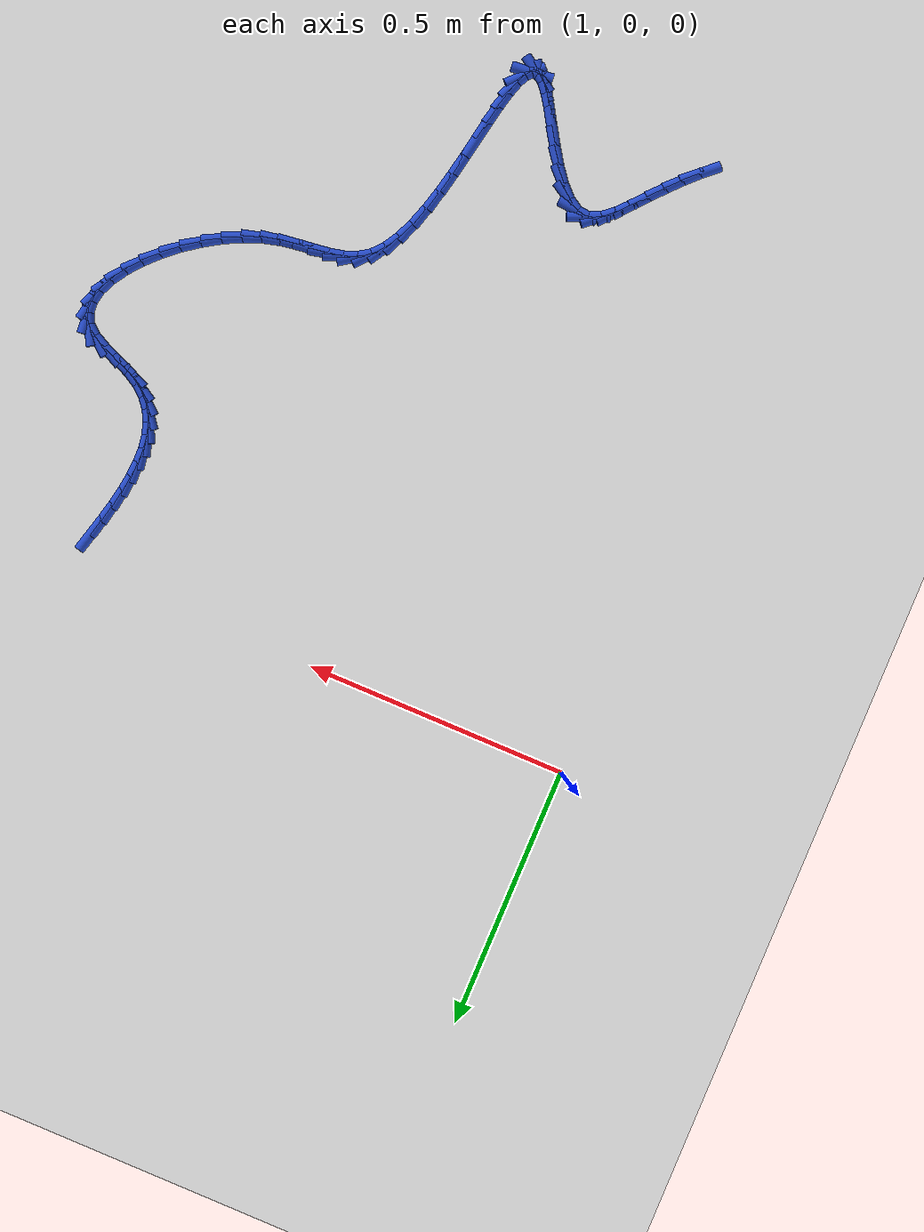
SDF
<sdf version="1.6">
 <world name="default">
  <model name="ground_plane">
   <static>1</static>
   <link name="link">
    <collision name="collision">
     <geometry><plane><normal>0 0 1</normal><size>100 100</size></plane></geometry>
     <surface><friction><ode><mu>100</mu><mu2>50</mu2></ode></friction></surface>
    </collision>
    <visual name="visual">
     <cast_shadows>0</cast_shadows>
     <geometry><plane><normal>0 0 1</normal><size>100 100</size></plane></geometry>
     <material>
      <script><uri>file://media/materials/scripts/gazebo.material</uri><name>Gazebo/WhiteGlow</name></script>
     </material>
    </visual>
   </link>
  </model>
  <model name="line">
   <link name="link_132">
    <pose>1.9674159593925404 -0.07118699439387949 0.01 0 1.57 1.3107401116216613</pose>
    <collision name="collision">
     <geometry><cylinder><radius>0.01</radius><length>0.08</length></cylinder></geometry>
    </collision>
    <visual name="visual">
     <material>
      <script><name>Gazebo/Blue</name><uri>file://media/materials/scripts/gazebo.material</uri></script>
     </material>
     <geometry><cylinder><radius>0.01</radius><length>0.08</length></cylinder></geometry>
    </visual>
   </link>
   <link name="link_133">
    <pose>1.9587963435968283 -0.10358161089456536 0.01 0 1.57 1.339821732211831</pose>
    <collision name="collision">
     <geometry><cylinder><radius>0.01</radius><length>0.08</length></cylinder></geometry>
    </collision>
    <visual name="visual">
     <material>
      <script><name>Gazebo/Blue</name><uri>file://media/materials/scripts/gazebo.material</uri></script>
     </material>
     <geometry><cylinder><radius>0.01</radius><length>0.08</length></cylinder></geometry>
    </visual>
   </link>
   <link name="link_134">
    <pose>1.9513693643880836 -0.1351627138305053 0.01 0 1.57 1.3810361119806578</pose>
    <collision name="collision">
     <geometry><cylinder><radius>0.01</radius><length>0.08</length></cylinder></geometry>
    </collision>
    <visual name="visual">
     <material>
      <script><name>Gazebo/Blue</name><uri>file://media/materials/scripts/gazebo.material</uri></script>
     </material>
     <geometry><cylinder><radius>0.01</radius><length>0.08</length></cylinder></geometry>
    </visual>
   </link>
   <link name="link_135">
    <pose>1.9454920492646681 -0.16576238353108033 0.01 0 1.57 1.4367799848557148</pose>
    <collision name="collision">
     <geometry><cylinder><radius>0.01</radius><length>0.08</length></cylinder></geometry>
    </collision>
    <visual name="visual">
     <material>
      <script><name>Gazebo/Blue</name><uri>file://media/materials/scripts/gazebo.material</uri></script>
     </material>
     <geometry><cylinder><radius>0.01</radius><length>0.08</length></cylinder></geometry>
    </visual>
   </link>
   <link name="link_136">
    <pose>1.9415214257249453 -0.19521270032567065 0.01 0 1.57 1.5101980284292835</pose>
    <collision name="collision">
     <geometry><cylinder><radius>0.01</radius><length>0.08</length></cylinder></geometry>
    </collision>
    <visual name="visual">
     <material>
      <script><name>Gazebo/Blue</name><uri>file://media/materials/scripts/gazebo.material</uri></script>
     </material>
     <geometry><cylinder><radius>0.01</radius><length>0.08</length></cylinder></geometry>
    </visual>
   </link>
   <link name="link_137">
    <pose>1.939814521267277 -0.22334574454365488 0.01 0 1.57 -1.536516485348217</pose>
    <collision name="collision">
     <geometry><cylinder><radius>0.01</radius><length>0.08</length></cylinder></geometry>
    </collision>
    <visual name="visual">
     <material>
      <script><name>Gazebo/Blue</name><uri>file://media/materials/scripts/gazebo.material</uri></script>
     </material>
     <geometry><cylinder><radius>0.01</radius><length>0.08</length></cylinder></geometry>
    </visual>
   </link>
   <link name="link_138">
    <pose>1.9407283633900279 -0.24999359651441505 0.01 0 1.57 -1.416339054290478</pose>
    <collision name="collision">
     <geometry><cylinder><radius>0.01</radius><length>0.08</length></cylinder></geometry>
    </collision>
    <visual name="visual">
     <material>
      <script><name>Gazebo/Blue</name><uri>file://media/materials/scripts/gazebo.material</uri></script>
     </material>
     <geometry><cylinder><radius>0.01</radius><length>0.08</length></cylinder></geometry>
    </visual>
   </link>
   <link name="link_139">
    <pose>1.9446199795915589 -0.2749883365673297 0.01 0 1.57 -1.2685156632145047</pose>
    <collision name="collision">
     <geometry><cylinder><radius>0.01</radius><length>0.08</length></cylinder></geometry>
    </collision>
    <visual name="visual">
     <material>
      <script><name>Gazebo/Blue</name><uri>file://media/materials/scripts/gazebo.material</uri></script>
     </material>
     <geometry><cylinder><radius>0.01</radius><length>0.08</length></cylinder></geometry>
    </visual>
   </link>
   <link name="link_140">
    <pose>1.951846397370233 -0.29816204503177945 0.01 0 1.57 -1.094918817462515</pose>
    <collision name="collision">
     <geometry><cylinder><radius>0.01</radius><length>0.08</length></cylinder></geometry>
    </collision>
    <visual name="visual">
     <material>
      <script><name>Gazebo/Blue</name><uri>file://media/materials/scripts/gazebo.material</uri></script>
     </material>
     <geometry><cylinder><radius>0.01</radius><length>0.08</length></cylinder></geometry>
    </visual>
   </link>
   <link name="link_141">
    <pose>1.9627646442244142 -0.3193468022371454 0.01 0 1.57 -0.9042872204437473</pose>
    <collision name="collision">
     <geometry><cylinder><radius>0.01</radius><length>0.08</length></cylinder></geometry>
    </collision>
    <visual name="visual">
     <material>
      <script><name>Gazebo/Blue</name><uri>file://media/materials/scripts/gazebo.material</uri></script>
     </material>
     <geometry><cylinder><radius>0.01</radius><length>0.08</length></cylinder></geometry>
    </visual>
   </link>
   <link name="link_142">
    <pose>1.9777317476524636 -0.3383746885128062 0.01 0 1.57 -0.7115255822173682</pose>
    <collision name="collision">
     <geometry><cylinder><radius>0.01</radius><length>0.08</length></cylinder></geometry>
    </collision>
    <visual name="visual">
     <material>
      <script><name>Gazebo/Blue</name><uri>file://media/materials/scripts/gazebo.material</uri></script>
     </material>
     <geometry><cylinder><radius>0.01</radius><length>0.08</length></cylinder></geometry>
    </visual>
   </link>
   <link name="link_143">
    <pose>1.9971047351527456 -0.3550777841881433 0.01 0 1.57 -0.5325068293064062</pose>
    <collision name="collision">
     <geometry><cylinder><radius>0.01</radius><length>0.08</length></cylinder></geometry>
    </collision>
    <visual name="visual">
     <material>
      <script><name>Gazebo/Blue</name><uri>file://media/materials/scripts/gazebo.material</uri></script>
     </material>
     <geometry><cylinder><radius>0.01</radius><length>0.08</length></cylinder></geometry>
    </visual>
   </link>
   <link name="link_144">
    <pose>2.0212286235820756 -0.3692937357733466 0.01 0 1.57 -0.41055981130311553</pose>
    <collision name="collision">
     <geometry><cylinder><radius>0.01</radius><length>0.08</length></cylinder></geometry>
    </collision>
    <visual name="visual">
     <material>
      <script><name>Gazebo/Blue</name><uri>file://media/materials/scripts/gazebo.material</uri></script>
     </material>
     <geometry><cylinder><radius>0.01</radius><length>0.08</length></cylinder></geometry>
    </visual>
   </link>
   <link name="link_145">
    <pose>2.049165694926219 -0.38145465712644383 0.01 0 1.57 -0.38924727225726863</pose>
    <collision name="collision">
     <geometry><cylinder><radius>0.01</radius><length>0.08</length></cylinder></geometry>
    </collision>
    <visual name="visual">
     <material>
      <script><name>Gazebo/Blue</name><uri>file://media/materials/scripts/gazebo.material</uri></script>
     </material>
     <geometry><cylinder><radius>0.01</radius><length>0.08</length></cylinder></geometry>
    </visual>
   </link>
   <link name="link_146">
    <pose>2.077573806975296 -0.39310696226748726 0.01 0 1.57 -0.4692170128843568</pose>
    <collision name="collision">
     <geometry><cylinder><radius>0.01</radius><length>0.08</length></cylinder></geometry>
    </collision>
    <visual name="visual">
     <material>
      <script><name>Gazebo/Blue</name><uri>file://media/materials/scripts/gazebo.material</uri></script>
     </material>
     <geometry><cylinder><radius>0.01</radius><length>0.08</length></cylinder></geometry>
    </visual>
   </link>
   <link name="link_147">
    <pose>2.102846310009885 -0.40591964789610907 0.01 0 1.57 -0.6996203925345501</pose>
    <collision name="collision">
     <geometry><cylinder><radius>0.01</radius><length>0.08</length></cylinder></geometry>
    </collision>
    <visual name="visual">
     <material>
      <script><name>Gazebo/Blue</name><uri>file://media/materials/scripts/gazebo.material</uri></script>
     </material>
     <geometry><cylinder><radius>0.01</radius><length>0.08</length></cylinder></geometry>
    </visual>
   </link>
   <link name="link_148">
    <pose>2.121410104240281 -0.42154367350856586 0.01 0 1.57 -1.0906399799342212</pose>
    <collision name="collision">
     <geometry><cylinder><radius>0.01</radius><length>0.08</length></cylinder></geometry>
    </collision>
    <visual name="visual">
     <material>
      <script><name>Gazebo/Blue</name><uri>file://media/materials/scripts/gazebo.material</uri></script>
     </material>
     <geometry><cylinder><radius>0.01</radius><length>0.08</length></cylinder></geometry>
    </visual>
   </link>
   <link name="link_149">
    <pose>2.131394563764831 -0.440714710014479 0.01 0 1.57 -1.4802467335282632</pose>
    <collision name="collision">
     <geometry><cylinder><radius>0.01</radius><length>0.08</length></cylinder></geometry>
    </collision>
    <visual name="visual">
     <material>
      <script><name>Gazebo/Blue</name><uri>file://media/materials/scripts/gazebo.material</uri></script>
     </material>
     <geometry><cylinder><radius>0.01</radius><length>0.08</length></cylinder></geometry>
    </visual>
   </link>
   <link name="link_150">
    <pose>2.133403330430022 -0.46283820584777613 0.01 0 1.57 1.3618613385644216</pose>
    <collision name="collision">
     <geometry><cylinder><radius>0.01</radius><length>0.08</length></cylinder></geometry>
    </collision>
    <visual name="visual">
     <material>
      <script><name>Gazebo/Blue</name><uri>file://media/materials/scripts/gazebo.material</uri></script>
     </material>
     <geometry><cylinder><radius>0.01</radius><length>0.08</length></cylinder></geometry>
    </visual>
   </link>
   <link name="link_151">
    <pose>2.1282347501849377 -0.48721493209953326 0.01 0 1.57 1.1518375762488062</pose>
    <collision name="collision">
     <geometry><cylinder><radius>0.01</radius><length>0.08</length></cylinder></geometry>
    </collision>
    <visual name="visual">
     <material>
      <script><name>Gazebo/Blue</name><uri>file://media/materials/scripts/gazebo.material</uri></script>
     </material>
     <geometry><cylinder><radius>0.01</radius><length>0.08</length></cylinder></geometry>
    </visual>
   </link>
   <link name="link_152">
    <pose>2.116687168978661 -0.5131456598608264 0.01 0 1.57 1.0018668428290574</pose>
    <collision name="collision">
     <geometry><cylinder><radius>0.01</radius><length>0.08</length></cylinder></geometry>
    </collision>
    <visual name="visual">
     <material>
      <script><name>Gazebo/Blue</name><uri>file://media/materials/scripts/gazebo.material</uri></script>
     </material>
     <geometry><cylinder><radius>0.01</radius><length>0.08</length></cylinder></geometry>
    </visual>
   </link>
   <link name="link_153">
    <pose>2.0995589327602766 -0.5399311602227296 0.01 0 1.57 0.8880116133965518</pose>
    <collision name="collision">
     <geometry><cylinder><radius>0.01</radius><length>0.08</length></cylinder></geometry>
    </collision>
    <visual name="visual">
     <material>
      <script><name>Gazebo/Blue</name><uri>file://media/materials/scripts/gazebo.material</uri></script>
     </material>
     <geometry><cylinder><radius>0.01</radius><length>0.08</length></cylinder></geometry>
    </visual>
   </link>
   <link name="link_154">
    <pose>2.0776483874788654 -0.5668722042763196 0.01 0 1.57 0.7950140935343456</pose>
    <collision name="collision">
     <geometry><cylinder><radius>0.01</radius><length>0.08</length></cylinder></geometry>
    </collision>
    <visual name="visual">
     <material>
      <script><name>Gazebo/Blue</name><uri>file://media/materials/scripts/gazebo.material</uri></script>
     </material>
     <geometry><cylinder><radius>0.01</radius><length>0.08</length></cylinder></geometry>
    </visual>
   </link>
   <link name="link_155">
    <pose>2.0517538790835137 -0.5932695631126699 0.01 0 1.57 0.7131408136126925</pose>
    <collision name="collision">
     <geometry><cylinder><radius>0.01</radius><length>0.08</length></cylinder></geometry>
    </collision>
    <visual name="visual">
     <material>
      <script><name>Gazebo/Blue</name><uri>file://media/materials/scripts/gazebo.material</uri></script>
     </material>
     <geometry><cylinder><radius>0.01</radius><length>0.08</length></cylinder></geometry>
    </visual>
   </link>
   <link name="link_156">
    <pose>2.0226737535233026 -0.6184240078228579 0.01 0 1.57 0.6355578893696832</pose>
    <collision name="collision">
     <geometry><cylinder><radius>0.01</radius><length>0.08</length></cylinder></geometry>
    </collision>
    <visual name="visual">
     <material>
      <script><name>Gazebo/Blue</name><uri>file://media/materials/scripts/gazebo.material</uri></script>
     </material>
     <geometry><cylinder><radius>0.01</radius><length>0.08</length></cylinder></geometry>
    </visual>
   </link>
   <link name="link_157">
    <pose>1.9912063567473184 -0.6416363094979572 0.01 0 1.57 0.5566549611223303</pose>
    <collision name="collision">
     <geometry><cylinder><radius>0.01</radius><length>0.08</length></cylinder></geometry>
    </collision>
    <visual name="visual">
     <material>
      <script><name>Gazebo/Blue</name><uri>file://media/materials/scripts/gazebo.material</uri></script>
     </material>
     <geometry><cylinder><radius>0.01</radius><length>0.08</length></cylinder></geometry>
    </visual>
   </link>
   <link name="link_158">
    <pose>1.958150034704642 -0.6622072392290446 0.01 0 1.57 0.4708745973615563</pose>
    <collision name="collision">
     <geometry><cylinder><radius>0.01</radius><length>0.08</length></cylinder></geometry>
    </collision>
    <visual name="visual">
     <material>
      <script><name>Gazebo/Blue</name><uri>file://media/materials/scripts/gazebo.material</uri></script>
     </material>
     <geometry><cylinder><radius>0.01</radius><length>0.08</length></cylinder></geometry>
    </visual>
   </link>
   <link name="link_159">
    <pose>1.924303133344359 -0.6794375681071941 0.01 0 1.57 0.3716825789050606</pose>
    <collision name="collision">
     <geometry><cylinder><radius>0.01</radius><length>0.08</length></cylinder></geometry>
    </collision>
    <visual name="visual">
     <material>
      <script><name>Gazebo/Blue</name><uri>file://media/materials/scripts/gazebo.material</uri></script>
     </material>
     <geometry><cylinder><radius>0.01</radius><length>0.08</length></cylinder></geometry>
    </visual>
   </link>
   <link name="link_160">
    <pose>1.8904639986155516 -0.6926280672234819 0.01 0 1.57 0.25699843945233625</pose>
    <collision name="collision">
     <geometry><cylinder><radius>0.01</radius><length>0.08</length></cylinder></geometry>
    </collision>
    <visual name="visual">
     <material>
      <script><name>Gazebo/Blue</name><uri>file://media/materials/scripts/gazebo.material</uri></script>
     </material>
     <geometry><cylinder><radius>0.01</radius><length>0.08</length></cylinder></geometry>
    </visual>
   </link>
   <link name="link_161">
    <pose>1.8573806364252616 -0.7013227097089474 0.01 0 1.57 0.16513491239480968</pose>
    <collision name="collision">
     <geometry><cylinder><radius>0.01</radius><length>0.08</length></cylinder></geometry>
    </collision>
    <visual name="visual">
     <material>
      <script><name>Gazebo/Blue</name><uri>file://media/materials/scripts/gazebo.material</uri></script>
     </material>
     <geometry><cylinder><radius>0.01</radius><length>0.08</length></cylinder></geometry>
    </visual>
   </link>
   <link name="link_162">
    <pose>1.825475176868853 -0.7066398349240101 0.01 0 1.57 0.12048618757107937</pose>
    <collision name="collision">
     <geometry><cylinder><radius>0.01</radius><length>0.08</length></cylinder></geometry>
    </collision>
    <visual name="visual">
     <material>
      <script><name>Gazebo/Blue</name><uri>file://media/materials/scripts/gazebo.material</uri></script>
     </material>
     <geometry><cylinder><radius>0.01</radius><length>0.08</length></cylinder></geometry>
    </visual>
   </link>
   <link name="link_163">
    <pose>1.7950399845090619 -0.7103247034824635 0.01 0 1.57 0.13174390052000884</pose>
    <collision name="collision">
     <geometry><cylinder><radius>0.01</radius><length>0.08</length></cylinder></geometry>
    </collision>
    <visual name="visual">
     <material>
      <script><name>Gazebo/Blue</name><uri>file://media/materials/scripts/gazebo.material</uri></script>
     </material>
     <geometry><cylinder><radius>0.01</radius><length>0.08</length></cylinder></geometry>
    </visual>
   </link>
   <link name="link_164">
    <pose>1.766367089867902 -0.7141241898105339 0.01 0 1.57 0.2095483302429837</pose>
    <collision name="collision">
     <geometry><cylinder><radius>0.01</radius><length>0.08</length></cylinder></geometry>
    </collision>
    <visual name="visual">
     <material>
      <script><name>Gazebo/Blue</name><uri>file://media/materials/scripts/gazebo.material</uri></script>
     </material>
     <geometry><cylinder><radius>0.01</radius><length>0.08</length></cylinder></geometry>
    </visual>
   </link>
   <link name="link_165">
    <pose>1.7397485234673848 -0.7197851683344488 0.01 0 1.57 0.3647986354386959</pose>
    <collision name="collision">
     <geometry><cylinder><radius>0.01</radius><length>0.08</length></cylinder></geometry>
    </collision>
    <visual name="visual">
     <material>
      <script><name>Gazebo/Blue</name><uri>file://media/materials/scripts/gazebo.material</uri></script>
     </material>
     <geometry><cylinder><radius>0.01</radius><length>0.08</length></cylinder></geometry>
    </visual>
   </link>
   <link name="link_166">
    <pose>1.715476315829524 -0.7290545134804344 0.01 0 1.57 0.5944395213152355</pose>
    <collision name="collision">
     <geometry><cylinder><radius>0.01</radius><length>0.08</length></cylinder></geometry>
    </collision>
    <visual name="visual">
     <material>
      <script><name>Gazebo/Blue</name><uri>file://media/materials/scripts/gazebo.material</uri></script>
     </material>
     <geometry><cylinder><radius>0.01</radius><length>0.08</length></cylinder></geometry>
    </visual>
   </link>
   <link name="link_167">
    <pose>1.693842492916378 -0.7436790780982915 0.01 0 1.57 0.8447992620708344</pose>
    <collision name="collision">
     <geometry><cylinder><radius>0.01</radius><length>0.08</length></cylinder></geometry>
    </collision>
    <visual name="visual">
     <material>
      <script><name>Gazebo/Blue</name><uri>file://media/materials/scripts/gazebo.material</uri></script>
     </material>
     <geometry><cylinder><radius>0.01</radius><length>0.08</length></cylinder></geometry>
    </visual>
   </link>
   <link name="link_168">
    <pose>1.6750267703335773 -0.7648742936995974 0.01 0 1.57 1.0309377559561201</pose>
    <collision name="collision">
     <geometry><cylinder><radius>0.01</radius><length>0.08</length></cylinder></geometry>
    </collision>
    <visual name="visual">
     <material>
      <script><name>Gazebo/Blue</name><uri>file://media/materials/scripts/gazebo.material</uri></script>
     </material>
     <geometry><cylinder><radius>0.01</radius><length>0.08</length></cylinder></geometry>
    </visual>
   </link>
   <link name="link_169">
    <pose>1.6588050567928203 -0.7919448899980276 0.01 0 1.57 1.1578416799729858</pose>
    <collision name="collision">
     <geometry><cylinder><radius>0.01</radius><length>0.08</length></cylinder></geometry>
    </collision>
    <visual name="visual">
     <material>
      <script><name>Gazebo/Blue</name><uri>file://media/materials/scripts/gazebo.material</uri></script>
     </material>
     <geometry><cylinder><radius>0.01</radius><length>0.08</length></cylinder></geometry>
    </visual>
   </link>
   <link name="link_170">
    <pose>1.6448625399195107 -0.823766329784619 0.01 0 1.57 1.244932830431193</pose>
    <collision name="collision">
     <geometry><cylinder><radius>0.01</radius><length>0.08</length></cylinder></geometry>
    </collision>
    <visual name="visual">
     <material>
      <script><name>Gazebo/Blue</name><uri>file://media/materials/scripts/gazebo.material</uri></script>
     </material>
     <geometry><cylinder><radius>0.01</radius><length>0.08</length></cylinder></geometry>
    </visual>
   </link>
   <link name="link_171">
    <pose>1.6328844073390505 -0.8592140758504102 0.01 0 1.57 1.3050669409812012</pose>
    <collision name="collision">
     <geometry><cylinder><radius>0.01</radius><length>0.08</length></cylinder></geometry>
    </collision>
    <visual name="visual">
     <material>
      <script><name>Gazebo/Blue</name><uri>file://media/materials/scripts/gazebo.material</uri></script>
     </material>
     <geometry><cylinder><radius>0.01</radius><length>0.08</length></cylinder></geometry>
    </visual>
   </link>
   <link name="link_172">
    <pose>1.6225558466768415 -0.8971635909864417 0.01 0 1.57 1.3459684332078443</pose>
    <collision name="collision">
     <geometry><cylinder><radius>0.01</radius><length>0.08</length></cylinder></geometry>
    </collision>
    <visual name="visual">
     <material>
      <script><name>Gazebo/Blue</name><uri>file://media/materials/scripts/gazebo.material</uri></script>
     </material>
     <geometry><cylinder><radius>0.01</radius><length>0.08</length></cylinder></geometry>
    </visual>
   </link>
   <link name="link_173">
    <pose>1.6135620455582862 -0.9364903379837484 0.01 0 1.57 1.3719929541941562</pose>
    <collision name="collision">
     <geometry><cylinder><radius>0.01</radius><length>0.08</length></cylinder></geometry>
    </collision>
    <visual name="visual">
     <material>
      <script><name>Gazebo/Blue</name><uri>file://media/materials/scripts/gazebo.material</uri></script>
     </material>
     <geometry><cylinder><radius>0.01</radius><length>0.08</length></cylinder></geometry>
    </visual>
   </link>
   <link name="link_174">
    <pose>1.6055881916087877 -0.9760697796333722 0.01 0 1.57 1.3851727543523937</pose>
    <collision name="collision">
     <geometry><cylinder><radius>0.01</radius><length>0.08</length></cylinder></geometry>
    </collision>
    <visual name="visual">
     <material>
      <script><name>Gazebo/Blue</name><uri>file://media/materials/scripts/gazebo.material</uri></script>
     </material>
     <geometry><cylinder><radius>0.01</radius><length>0.08</length></cylinder></geometry>
    </visual>
   </link>
   <link name="link_175">
    <pose>1.5983194724537482 -1.0147773787263485 0.01 0 1.57 1.385578818084345</pose>
    <collision name="collision">
     <geometry><cylinder><radius>0.01</radius><length>0.08</length></cylinder></geometry>
    </collision>
    <visual name="visual">
     <material>
      <script><name>Gazebo/Blue</name><uri>file://media/materials/scripts/gazebo.material</uri></script>
     </material>
     <geometry><cylinder><radius>0.01</radius><length>0.08</length></cylinder></geometry>
    </visual>
   </link>
   <link name="link_176">
    <pose>1.5914410757185684 -1.0514885980537176 0.01 0 1.57 1.370973759283009</pose>
    <collision name="collision">
     <geometry><cylinder><radius>0.01</radius><length>0.08</length></cylinder></geometry>
    </collision>
    <visual name="visual">
     <material>
      <script><name>Gazebo/Blue</name><uri>file://media/materials/scripts/gazebo.material</uri></script>
     </material>
     <geometry><cylinder><radius>0.01</radius><length>0.08</length></cylinder></geometry>
    </visual>
   </link>
   <link name="link_177">
    <pose>1.5846381890286527 -1.0850789004065162 0.01 0 1.57 1.3352698587811187</pose>
    <collision name="collision">
     <geometry><cylinder><radius>0.01</radius><length>0.08</length></cylinder></geometry>
    </collision>
    <visual name="visual">
     <material>
      <script><name>Gazebo/Blue</name><uri>file://media/materials/scripts/gazebo.material</uri></script>
     </material>
     <geometry><cylinder><radius>0.01</radius><length>0.08</length></cylinder></geometry>
    </visual>
   </link>
   <link name="link_178">
    <pose>1.5775960000094027 -1.114423748575785 0.01 0 1.57 1.2639583058481378</pose>
    <collision name="collision">
     <geometry><cylinder><radius>0.01</radius><length>0.08</length></cylinder></geometry>
    </collision>
    <visual name="visual">
     <material>
      <script><name>Gazebo/Blue</name><uri>file://media/materials/scripts/gazebo.material</uri></script>
     </material>
     <geometry><cylinder><radius>0.01</radius><length>0.08</length></cylinder></geometry>
    </visual>
   </link>
   <link name="link_179">
    <pose>1.5699996962862208 -1.13839860535256 0.01 0 1.57 1.1198102251095012</pose>
    <collision name="collision">
     <geometry><cylinder><radius>0.01</radius><length>0.08</length></cylinder></geometry>
    </collision>
    <visual name="visual">
     <material>
      <script><name>Gazebo/Blue</name><uri>file://media/materials/scripts/gazebo.material</uri></script>
     </material>
     <geometry><cylinder><radius>0.01</radius><length>0.08</length></cylinder></geometry>
    </visual>
   </link>
   <link name="link_180">
    <pose>1.5615344654845096 -1.1558789335278816 0.01 0 1.57 0.7962787990365983</pose>
    <collision name="collision">
     <geometry><cylinder><radius>0.01</radius><length>0.08</length></cylinder></geometry>
    </collision>
    <visual name="visual">
     <material>
      <script><name>Gazebo/Blue</name><uri>file://media/materials/scripts/gazebo.material</uri></script>
     </material>
     <geometry><cylinder><radius>0.01</radius><length>0.08</length></cylinder></geometry>
    </visual>
   </link>
   <link name="link_181">
    <pose>1.5518854952296708 -1.1657401958927862 0.01 0 1.57 0.09992685151781662</pose>
    <collision name="collision">
     <geometry><cylinder><radius>0.01</radius><length>0.08</length></cylinder></geometry>
    </collision>
    <visual name="visual">
     <material>
      <script><name>Gazebo/Blue</name><uri>file://media/materials/scripts/gazebo.material</uri></script>
     </material>
     <geometry><cylinder><radius>0.01</radius><length>0.08</length></cylinder></geometry>
    </visual>
   </link>
   <link name="link_182">
    <pose>1.5407379731471076 -1.166857855238314 0.01 0 1.57 -0.590921807276673</pose>
    <collision name="collision">
     <geometry><cylinder><radius>0.01</radius><length>0.08</length></cylinder></geometry>
    </collision>
    <visual name="visual">
     <material>
      <script><name>Gazebo/Blue</name><uri>file://media/materials/scripts/gazebo.material</uri></script>
     </material>
     <geometry><cylinder><radius>0.01</radius><length>0.08</length></cylinder></geometry>
    </visual>
   </link>
   <link name="link_183">
    <pose>1.5277861841714493 -1.1581686097365154 0.01 0 1.57 -0.8794323258756442</pose>
    <collision name="collision">
     <geometry><cylinder><radius>0.01</radius><length>0.08</length></cylinder></geometry>
    </collision>
    <visual name="visual">
     <material>
      <script><name>Gazebo/Blue</name><uri>file://media/materials/scripts/gazebo.material</uri></script>
     </material>
     <geometry><cylinder><radius>0.01</radius><length>0.08</length></cylinder></geometry>
    </visual>
   </link>
   <link name="link_184">
    <pose>1.5129708089234952 -1.1402676846409308 0.01 0 1.57 -0.9828458159825519</pose>
    <collision name="collision">
     <geometry><cylinder><radius>0.01</radius><length>0.08</length></cylinder></geometry>
    </collision>
    <visual name="visual">
     <material>
      <script><name>Gazebo/Blue</name><uri>file://media/materials/scripts/gazebo.material</uri></script>
     </material>
     <geometry><cylinder><radius>0.01</radius><length>0.08</length></cylinder></geometry>
    </visual>
   </link>
   <link name="link_185">
    <pose>1.4965015260011938 -1.1155609717671036 0.01 0 1.57 -1.0180277494391623</pose>
    <collision name="collision">
     <geometry><cylinder><radius>0.01</radius><length>0.08</length></cylinder></geometry>
    </collision>
    <visual name="visual">
     <material>
      <script><name>Gazebo/Blue</name><uri>file://media/materials/scripts/gazebo.material</uri></script>
     </material>
     <geometry><cylinder><radius>0.01</radius><length>0.08</length></cylinder></geometry>
    </visual>
   </link>
   <link name="link_186">
    <pose>1.478601642688039 -1.0865460996992355 0.01 0 1.57 -1.0159077717356209</pose>
    <collision name="collision">
     <geometry><cylinder><radius>0.01</radius><length>0.08</length></cylinder></geometry>
    </collision>
    <visual name="visual">
     <material>
      <script><name>Gazebo/Blue</name><uri>file://media/materials/scripts/gazebo.material</uri></script>
     </material>
     <geometry><cylinder><radius>0.01</radius><length>0.08</length></cylinder></geometry>
    </visual>
   </link>
   <link name="link_187">
    <pose>1.459494466267523 -1.0557206970215243 0.01 0 1.57 -0.9828176339638597</pose>
    <collision name="collision">
     <geometry><cylinder><radius>0.01</radius><length>0.08</length></cylinder></geometry>
    </collision>
    <visual name="visual">
     <material>
      <script><name>Gazebo/Blue</name><uri>file://media/materials/scripts/gazebo.material</uri></script>
     </material>
     <geometry><cylinder><radius>0.01</radius><length>0.08</length></cylinder></geometry>
    </visual>
   </link>
   <link name="link_188">
    <pose>1.4394033040231393 -1.0255823923181724 0.01 0 1.57 -0.9123486808711055</pose>
    <collision name="collision">
     <geometry><cylinder><radius>0.01</radius><length>0.08</length></cylinder></geometry>
    </collision>
    <visual name="visual">
     <material>
      <script><name>Gazebo/Blue</name><uri>file://media/materials/scripts/gazebo.material</uri></script>
     </material>
     <geometry><cylinder><radius>0.01</radius><length>0.08</length></cylinder></geometry>
    </visual>
   </link>
   <link name="link_189">
    <pose>1.4185514632383802 -0.9986288141733782 0.01 0 1.57 -0.7826323983827749</pose>
    <collision name="collision">
     <geometry><cylinder><radius>0.01</radius><length>0.08</length></cylinder></geometry>
    </collision>
    <visual name="visual">
     <material>
      <script><name>Gazebo/Blue</name><uri>file://media/materials/scripts/gazebo.material</uri></script>
     </material>
     <geometry><cylinder><radius>0.01</radius><length>0.08</length></cylinder></geometry>
    </visual>
   </link>
   <link name="link_190">
    <pose>1.3971622511967396 -0.977357591171343 0.01 0 1.57 -0.5427631464353381</pose>
    <collision name="collision">
     <geometry><cylinder><radius>0.01</radius><length>0.08</length></cylinder></geometry>
    </collision>
    <visual name="visual">
     <material>
      <script><name>Gazebo/Blue</name><uri>file://media/materials/scripts/gazebo.material</uri></script>
     </material>
     <geometry><cylinder><radius>0.01</radius><length>0.08</length></cylinder></geometry>
    </visual>
   </link>
   <link name="link_191">
    <pose>1.3754589751817103 -0.9642663518962662 0.01 0 1.57 -0.11057666088061086</pose>
    <collision name="collision">
     <geometry><cylinder><radius>0.01</radius><length>0.08</length></cylinder></geometry>
    </collision>
    <visual name="visual">
     <material>
      <script><name>Gazebo/Blue</name><uri>file://media/materials/scripts/gazebo.material</uri></script>
     </material>
     <geometry><cylinder><radius>0.01</radius><length>0.08</length></cylinder></geometry>
    </visual>
   </link>
   <link name="link_192">
    <pose>1.353664528876891 -0.961846524178502 0.01 0 1.57 0.3994505655667462</pose>
    <collision name="collision">
     <geometry><cylinder><radius>0.01</radius><length>0.08</length></cylinder></geometry>
    </collision>
    <visual name="visual">
     <material>
      <script><name>Gazebo/Blue</name><uri>file://media/materials/scripts/gazebo.material</uri></script>
     </material>
     <geometry><cylinder><radius>0.01</radius><length>0.08</length></cylinder></geometry>
    </visual>
   </link>
   <link name="link_193">
    <pose>1.3318981239445558 -0.9710351188820407 0.01 0 1.57 0.6926899546053389</pose>
    <collision name="collision">
     <geometry><cylinder><radius>0.01</radius><length>0.08</length></cylinder></geometry>
    </collision>
    <visual name="visual">
     <material>
      <script><name>Gazebo/Blue</name><uri>file://media/materials/scripts/gazebo.material</uri></script>
     </material>
     <geometry><cylinder><radius>0.01</radius><length>0.08</length></cylinder></geometry>
    </visual>
   </link>
   <link name="link_194">
    <pose>1.3100392444741347 -0.9891751138671907 0.01 0 1.57 0.8249636639221279</pose>
    <collision name="collision">
     <geometry><cylinder><radius>0.01</radius><length>0.08</length></cylinder></geometry>
    </collision>
    <visual name="visual">
     <material>
      <script><name>Gazebo/Blue</name><uri>file://media/materials/scripts/gazebo.material</uri></script>
     </material>
     <geometry><cylinder><radius>0.01</radius><length>0.08</length></cylinder></geometry>
    </visual>
   </link>
   <link name="link_195">
    <pose>1.2879335948620425 -1.0131030565902837 0.01 0 1.57 0.8676781930280856</pose>
    <collision name="collision">
     <geometry><cylinder><radius>0.01</radius><length>0.08</length></cylinder></geometry>
    </collision>
    <visual name="visual">
     <material>
      <script><name>Gazebo/Blue</name><uri>file://media/materials/scripts/gazebo.material</uri></script>
     </material>
     <geometry><cylinder><radius>0.01</radius><length>0.08</length></cylinder></geometry>
    </visual>
   </link>
   <link name="link_196">
    <pose>1.2654268795046928 -1.0396554945076606 0.01 0 1.57 0.8545733315623968</pose>
    <collision name="collision">
     <geometry><cylinder><radius>0.01</radius><length>0.08</length></cylinder></geometry>
    </collision>
    <visual name="visual">
     <material>
      <script><name>Gazebo/Blue</name><uri>file://media/materials/scripts/gazebo.material</uri></script>
     </material>
     <geometry><cylinder><radius>0.01</radius><length>0.08</length></cylinder></geometry>
    </visual>
   </link>
   <link name="link_197">
    <pose>1.2424045571903826 -1.0661055457907451 0.01 0 1.57 0.8236990506067084</pose>
    <collision name="collision">
     <geometry><cylinder><radius>0.01</radius><length>0.08</length></cylinder></geometry>
    </collision>
    <visual name="visual">
     <material>
      <script><name>Gazebo/Blue</name><uri>file://media/materials/scripts/gazebo.material</uri></script>
     </material>
     <geometry><cylinder><radius>0.01</radius><length>0.08</length></cylinder></geometry>
    </visual>
   </link>
   <link name="link_198">
    <pose>1.2189109925494004 -1.0914713845352546 0.01 0 1.57 0.7823533034927895</pose>
    <collision name="collision">
     <geometry><cylinder><radius>0.01</radius><length>0.08</length></cylinder></geometry>
    </collision>
    <visual name="visual">
     <material>
      <script><name>Gazebo/Blue</name><uri>file://media/materials/scripts/gazebo.material</uri></script>
     </material>
     <geometry><cylinder><radius>0.01</radius><length>0.08</length></cylinder></geometry>
    </visual>
   </link>
   <link name="link_199">
    <pose>1.1950302487607714 -1.1152071422994416 0.01 0 1.57 0.7280967070734995</pose>
    <collision name="collision">
     <geometry><cylinder><radius>0.01</radius><length>0.08</length></cylinder></geometry>
    </collision>
    <visual name="visual">
     <material>
      <script><name>Gazebo/Blue</name><uri>file://media/materials/scripts/gazebo.material</uri></script>
     </material>
     <geometry><cylinder><radius>0.01</radius><length>0.08</length></cylinder></geometry>
    </visual>
   </link>
  </model>
 </world>
</sdf>
